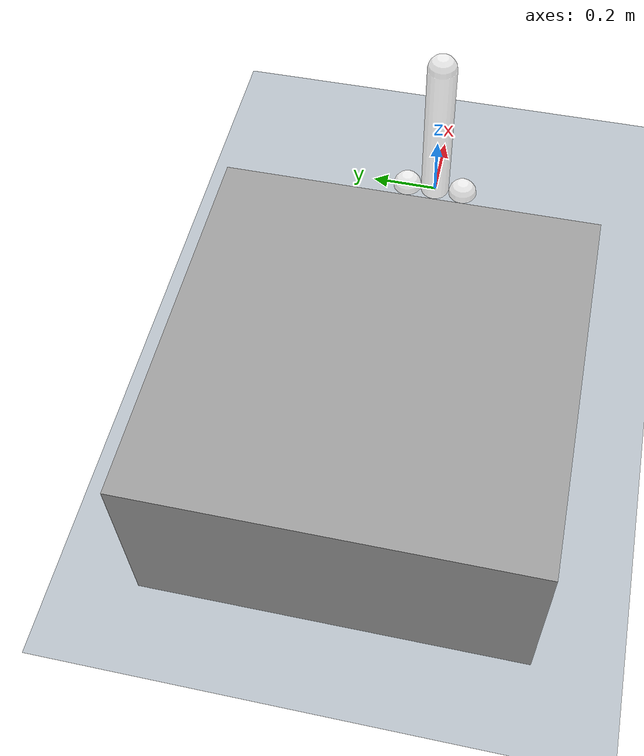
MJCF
<mujoco model="biped_platform">
    <include file="biped.xml"/>

    <!-- Override or add elements here -->
    <worldbody>

        <!-- Platform/Ledge -->
        <body name="platform" pos="0 0 0">
            <geom name="platform" type="box" size="0.5 0.5 0.25" pos="-1.0 0 0.25" rgba="0.6 0.6 0.6 1" contype="1" conaffinity="1"/>
        </body>

    </worldbody>
</mujoco>

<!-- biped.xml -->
<mujoco model="biped">

	<!-- Simulation Parameters -->
	<option solver="Newton" integrator="implicitfast" timestep="0.01" iterations="5" ls_iterations="8" cone="elliptic" />

    <!-- Inertia is computed from geometry -->
    <compiler inertiafromgeom="true" />

	<!-- Default properties -->
    <default>
        <joint damping="0.1" armature="0.5" frictionloss="0.1"/>
        <geom contype="0" conaffinity="0"/>
    </default>

    <asset>
        <texture type="skybox" builtin="flat" rgb1="0 0 0" rgb2="0 0 0" width="512" height="512"/>
        <texture type="2d" name="groundplane" builtin="checker" mark="edge" rgb1="0.2 0.3 0.4" rgb2="0.1 0.2 0.3" markrgb="0.9 0.9 0.9" width="300" height="300"/>
        <material name="groundplane" texture="groundplane" texuniform="true" texrepeat="5 5" reflectance="0.2"/>
    </asset>

    <!-- Memory settings (default is 1000) -->
    <size nstack="3000" />

	<!-- Robot -->
	<worldbody>

        <!-- Add light -->
        <light pos="-0.5 0.0 2.0" dir="0 0 -1" directional="true"/>

        <!-- Ground -->
        <geom name="ground" type="plane" size="0 0 0.01" material="groundplane" contype="1" conaffinity="6"/>

        <!-- Torso -->
        <body name="torso" pos="0 0 0">
            <geom name="torso" type="capsule" size="0.045 0.25" pos="0 0 0.25" density="2500" rgba="0.9 0.9 0.9 0.5" contype="1" conaffinity="1"/>
            <joint name="torso_x" type="slide" axis="1 0 0"/>
            <joint name="torso_z" type="slide" axis="0 0 1"/>
            <joint name="torso_pitch" type="hinge" axis="0 -1 0"/>

            <!-- Left leg -->
            <body name="left_thigh" pos="0 0.09 0">
                <geom name="left_thigh" type="capsule" size="0.045 0.2" pos="0 0 -0.2" density="500" rgba="0.9 0.9 0.9 0.5" contype="1" conaffinity="1"/>
                <joint name="left_hip_joint" type="hinge" axis="0 -1 0" pos="0 0 0" range="-90.0 90.0"/>

                <!-- Left Shin -->
                <body name="left_shin" pos="0 0 -0.4">
                    <geom name="left_shin" type="capsule" size="0.045 0.2" pos="0 0 -0.2" density="500" rgba="0.9 0.9 0.9 0.5" contype="1" conaffinity="1"/>
                    <joint name="left_knee_joint" type="hinge" axis="0 -1 0" pos="0 0 0" range="-140.0 0.0"/>

                    <!-- Left Foot -->
                    <geom name="left_foot" type="sphere" size="0.046" pos="0 0 -0.4" rgba="0 0 0 1" contype="2" conaffinity="1"/>
                    <site name="left_foot_site" pos="0 0 -0.4" size="0.047" type="sphere" rgba="0 0 0 0"/>

                </body>

            </body>

            <!-- Right leg -->
            <body name="right_thigh" pos="0 -0.09 0">
                <geom name="right_thigh" type="capsule" size="0.045 0.2" pos="0 0 -0.2" density="500" rgba="0.9 0.9 0.9 0.5" contype="1" conaffinity="1"/>
                <joint name="right_hip_joint" type="hinge" axis="0 -1 0" pos="0 0 0" range="-90.0 90.0"/>

                <!-- Right Shin -->
                <body name="right_shin" pos="0 0 -0.4">
                    <geom name="right_shin" type="capsule" size="0.045 0.2" pos="0 0 -0.2" density="500" rgba="0.9 0.9 0.9 0.5" contype="1" conaffinity="1"/>
                    <joint name="right_knee_joint" type="hinge" axis="0 -1 0" pos="0 0 0" range="-140.0 0.0"/>

                    <!-- Right Foot -->
                    <geom name="right_foot" type="sphere" size="0.046" pos="0 0 -0.4" rgba="0 0 0 1" contype="4" conaffinity="1"/>
                    <site name="right_foot_site" pos="0 0 -0.4" size="0.047" type="sphere" rgba="0 0 0 0"/>

                </body>

            </body>

        </body>
	</worldbody>

    <!-- Sensors -->
    <sensor>
        <!-- foot contact sensor -->
        <touch name="left_foot_touch"  site="left_foot_site"/>
        <touch name="right_foot_touch" site="right_foot_site"/>

        <!-- foot linear velocity in global coord-->
        <framelinvel name="left_foot_linvel"  objtype="site" objname="left_foot_site"/>
        <framelinvel name="right_foot_linvel" objtype="site" objname="right_foot_site"/>

        <!-- foot world position -->
        <framepos name="left_foot_pos"  objtype="site" objname="left_foot_site"/>
        <framepos name="right_foot_pos" objtype="site" objname="right_foot_site"/>
    </sensor>

    <!-- Actuators -->
	<actuator>
		<motor name="hip_left_motor" joint="left_hip_joint" ctrllimited="true" ctrlrange="-100 100" />
    	<motor name="knee_left_motor" joint="left_knee_joint" ctrllimited="true" ctrlrange="-100 100" />
		<motor name="hip_right_motor" joint="right_hip_joint" ctrllimited="true" ctrlrange="-100 100" />
		<motor name="knee_right_motor" joint="right_knee_joint" ctrllimited="true" ctrlrange="-100 100" />
	</actuator>

    <!-- default configuration (when you press "Load key" button) -->
    <keyframe>
        <key name="default" qpos="0 0.85 0 0 0 0 0" qvel="0 0 0 0 0 0 0"/>
        <key name="standing" qpos="0 0.83 0 0.22 -0.415 0.22 -0.415 " qvel="0 0 0 0 0 0 0"/>
    </keyframe>

</mujoco>
